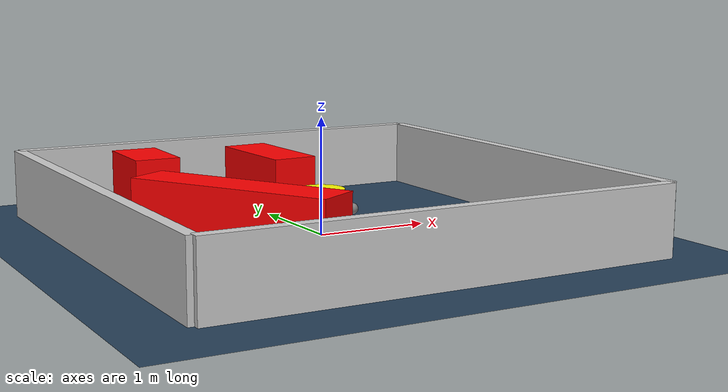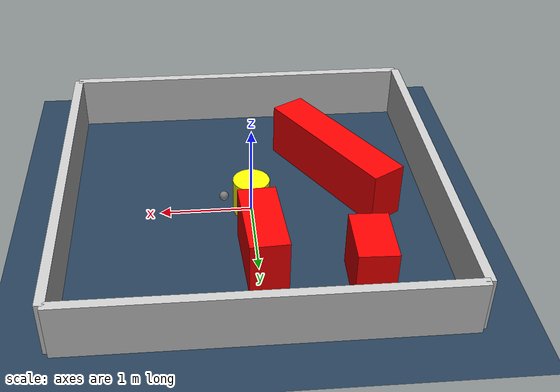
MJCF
<?xml version="1.0" ?>
<mujoco model="generated_environment">
  <option timestep="0.01" integrator="RK4" cone="elliptic"/>
  <default>
    <geom density="1"/>
  </default>
  <asset>
    <texture builtin="gradient" height="3072" rgb1="0.3 0.5 0.7" rgb2="0 0 0" type="skybox" width="512"/>
    <texture builtin="checker" height="300" mark="edge" markrgb="0.8 0.8 0.8" name="groundplane" rgb1="0.2 0.3 0.4" rgb2="0.1 0.2 0.3" type="2d" width="300"/>
    <material name="groundplane" reflectance="0.2" texrepeat="5 5" texture="groundplane" texuniform="true"/>
    <material name="robot" rgba="0.0 1.0 0.0 1"/>
  </asset>
  <worldbody>
    <light dir="0 0 -1" directional="true" pos="0 0 1.5"/>
    <geom condim="4" friction="1.0 0.005 0.001" material="groundplane" name="floor" size="0 0 0.05" type="plane"/>
    <body name="walls">
      <geom name="wall_1" condim="4" pos="-2.0 0.0 0.3" rgba="0.800000011920929 0.800000011920929 0.800000011920929 1.0" size="0.05 2.0 0.3" type="box"/>
      <geom name="wall_2" condim="4" pos="2.0 0.0 0.3" rgba="0.800000011920929 0.800000011920929 0.800000011920929 1.0" size="0.05 2.0 0.3" type="box"/>
      <geom name="wall_3" condim="4" pos="0.0 -2.0 0.3" rgba="0.800000011920929 0.800000011920929 0.800000011920929 1.0" size="2.0 0.05 0.3" type="box"/>
      <geom name="wall_4" condim="4" pos="0.0 2.0 0.3" rgba="0.800000011920929 0.800000011920929 0.800000011920929 1.0" size="2.0 0.05 0.3" type="box"/>
    </body>
    <body name="robot">
      <joint name="joint_x" type="slide" pos="0 0 0" axis="1 0 0"/>
      <joint name="joint_y" type="slide" pos="0 0 0" axis="0 1 0"/>
      <geom name="robot" type="sphere" pos="0.3 0.0 0.2" size="0.05" mass="5." friction="1.0 0.005 0.0001" condim="4" rgba="0.5 0.5 0.5 1.0"/>
      <site name="sensor_ball"/>
    </body>
    <body name="obstacle_movable_1">
      <geom name="obstacle_movable_1" condim="4" pos="0.0 0.0 0.2" euler="0 0 0.0" friction="1.0 0.005 0.001" rgba="1.0 1.0 0.0 1.0" size="0.2 0.2 0.0" type="cylinder" mass="0.1"/>
      <joint type="free"/>
    </body>
    <body name="obstacle_2_static">
      <geom name="obstacle_2_static" condim="4" pos="-0.9917603525439044 -0.49811315845745185 0.3" euler="0 0 300.8905150572734" friction="1.0 0.005 0.001" rgba="1 0 0 1" size="0.8921469295933215 0.2 0.3" type="box"/>
    </body>
    <body name="obstacle_3_static">
      <geom name="obstacle_3_static" condim="4" pos="-0.046813545750639785 0.9004582624468027 0.3" euler="0 0 93.35764904215759" friction="1.0 0.005 0.001" rgba="1 0 0 1" size="0.4657289872271189 0.2 0.3" type="box"/>
    </body>
    <body name="obstacle_4_static">
      <geom name="obstacle_4_static" condim="4" pos="-1.0805294515115123 1.266250254752255 0.3" euler="0 0 268.5416560079033" friction="1.0 0.005 0.001" rgba="1 0 0 1" size="0.3241884128273773 0.2 0.3" type="box"/>
    </body>
  </worldbody>
  <actuator>
    <motor name="actuator_x" joint="joint_x" gear="1" ctrlrange="-1 1"/>
    <motor name="actuator_y" joint="joint_y" gear="1" ctrlrange="-1 1"/>
  </actuator>
</mujoco>
